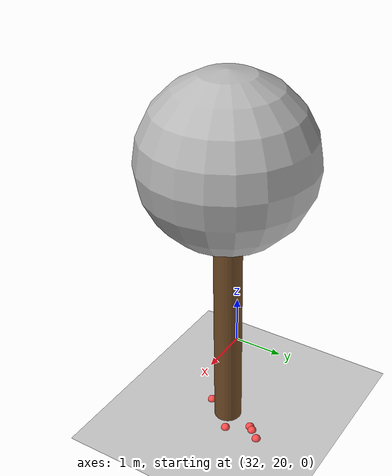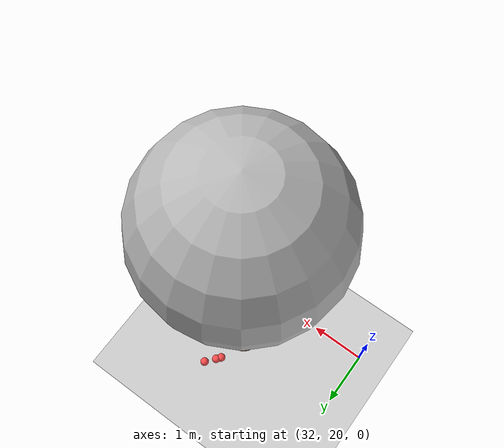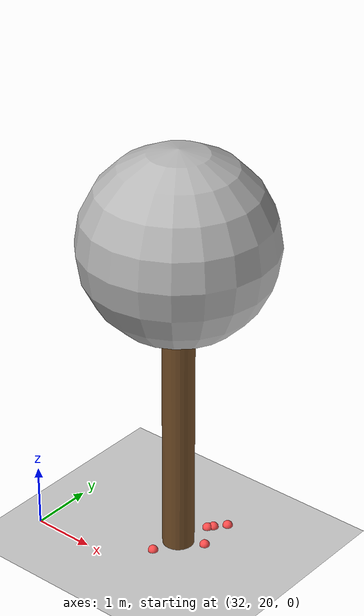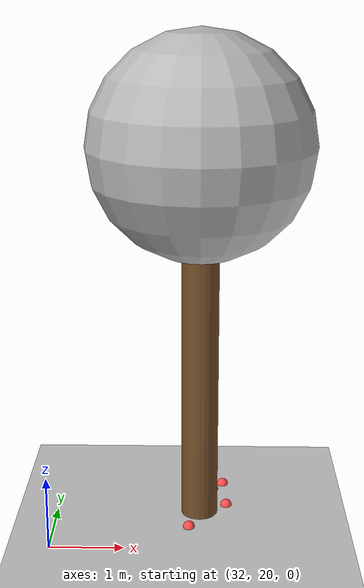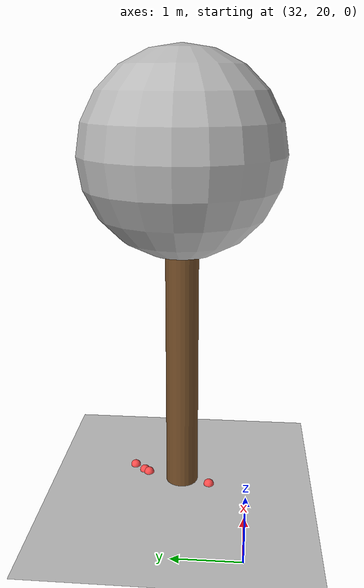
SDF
<sdf version="1.7">
 <world name="default">
  <model name="ground_plane">
   <static>1</static>
   <link name="link">
    <collision name="collision">
     <geometry><plane><normal>0 0 1</normal><size>100 100</size></plane></geometry>
     <surface>
      <contact><collide_bitmask>65535</collide_bitmask></contact>
      <friction><ode><mu>100</mu><mu2>50</mu2></ode></friction>
     </surface>
    </collision>
    <visual name="visual">
     <cast_shadows>0</cast_shadows>
     <geometry><plane><normal>0 0 1</normal><size>100 100</size></plane></geometry>
     <material>
      <script><uri>file://media/materials/scripts/gazebo.material</uri><name>Gazebo/Grey</name></script>
     </material>
    </visual>
   </link>
  </model>
  <model name="tree_simple_46">
   <static>1</static>
   <link name="link">
    <pose>0 0 0.1 0 -0 0</pose>
    <inertial>
     <mass>666</mass>
     <inertia>
      <ixx>0.0861167</ixx>
      <ixy>0</ixy>
      <ixz>0</ixz>
      <iyy>0.0861167</iyy>
      <iyz>0</iyz>
      <izz>0.0861167</izz>
     </inertia>
    </inertial>
    <collision name="collision_trunk">
     <pose>0 0 2 0 -0 0</pose>
     <geometry><cylinder><radius>0.25</radius><length>4</length></cylinder></geometry>
     <surface>
      <contact>
       <poissons_ratio>0.347</poissons_ratio>
       <elastic_modulus>8.8e+09</elastic_modulus>
       <ode><kp>100000</kp><kd>100</kd><max_vel>100</max_vel><min_depth>0.001</min_depth></ode>
      </contact>
      <friction>
       <torsional>
        <coefficient>1</coefficient>
        <use_patch_radius>0</use_patch_radius>
        <surface_radius>0.01</surface_radius>
       </torsional>
      </friction>
     </surface>
    </collision>
    <collision name="collision_treetop">
     <pose>0 0 5.2 0 -0 0</pose>
     <geometry><sphere><radius>1.5</radius></sphere></geometry>
     <surface>
      <contact>
       <poissons_ratio>0.347</poissons_ratio>
       <elastic_modulus>8.8e+09</elastic_modulus>
       <ode><kp>100000</kp><kd>100</kd><max_vel>100</max_vel><min_depth>0.001</min_depth></ode>
      </contact>
      <friction>
       <torsional>
        <coefficient>1</coefficient>
        <use_patch_radius>0</use_patch_radius>
        <surface_radius>0.01</surface_radius>
       </torsional>
      </friction>
     </surface>
    </collision>
    <visual name="trunk">
     <pose>0 0 2 0 -0 0</pose>
     <geometry><cylinder><radius>0.25</radius><length>4</length></cylinder></geometry>
     <material>
      <script>
       <uri>model://tree_simple/scripts</uri>
       <uri>model://tree_simple/materials/textures</uri>
       <name>TreeSimple/Trunk</name>
      </script>
     </material>
    </visual>
    <visual name="treetop">
     <pose>0 0 5.2 0 -0 0</pose>
     <geometry><sphere><radius>1.5</radius></sphere></geometry>
     <material>
      <script>
       <uri>model://tree_simple/scripts</uri>
       <uri>model://tree_simple/materials/textures</uri>
       <name>TreeSimple/Treetop</name>
      </script>
     </material>
    </visual>
   </link>
   <pose>34 21 -0.1 0 -0 0</pose>
  </model>
  <model name="seed_red_219">
   <link name="link">
    <inertial>
     <mass>1</mass>
     <inertia><ixx>0.1</ixx><ixy>0</ixy><ixz>0</ixz><iyy>0.1</iyy><iyz>0</iyz><izz>0.1</izz></inertia>
    </inertial>
    <visual name="visual">
     <geometry><sphere><radius>0.08</radius></sphere></geometry>
     <material>
      <script><name>Gazebo/Grey</name><uri>file://media/materials/scripts/gazebo.material</uri></script>
      <shader type="pixel"><normal_map>__default__</normal_map></shader>
      <ambient>1 0.3 0.3 1</ambient>
      <diffuse>0.7 0.7 0.7 1</diffuse>
      <specular>0.01 0.01 0.01 1</specular>
      <emissive>0 0 0 1</emissive>
     </material>
    </visual>
    <collision name="collision">
     <geometry><sphere><radius>0.0005</radius></sphere></geometry>
     <surface>
      <friction>
       <ode><mu>1</mu><mu2>1</mu2><fdir1>0 0 0</fdir1><slip1>0</slip1><slip2>0</slip2></ode>
       <torsional>
        <coefficient>1</coefficient>
        <patch_radius>0</patch_radius>
        <surface_radius>0</surface_radius>
        <use_patch_radius>1</use_patch_radius>
        <ode><slip>0</slip></ode>
       </torsional>
      </friction>
      <bounce><restitution_coefficient>0</restitution_coefficient><threshold>1e+06</threshold></bounce>
      <contact>
       <collide_without_contact>0</collide_without_contact>
       <collide_without_contact_bitmask>1</collide_without_contact_bitmask>
       <collide_bitmask>1</collide_bitmask>
       <ode>
        <soft_cfm>0</soft_cfm>
        <soft_erp>0.2</soft_erp>
        <kp>1e+13</kp>
        <kd>1</kd>
        <max_vel>0.01</max_vel>
        <min_depth>0</min_depth>
       </ode>
       <bullet>
        <split_impulse>1</split_impulse>
        <split_impulse_penetration_threshold>-0.01</split_impulse_penetration_threshold>
        <soft_cfm>0</soft_cfm>
        <soft_erp>0.2</soft_erp>
        <kp>1e+13</kp>
        <kd>1</kd>
       </bullet>
      </contact>
     </surface>
    </collision>
   </link>
   <static>0</static>
   <pose>34.1335 21.5543 0.0005 0 -0 0</pose>
  </model>
  <model name="seed_red_220">
   <link name="link">
    <inertial>
     <mass>1</mass>
     <inertia><ixx>0.1</ixx><ixy>0</ixy><ixz>0</ixz><iyy>0.1</iyy><iyz>0</iyz><izz>0.1</izz></inertia>
    </inertial>
    <visual name="visual">
     <geometry><sphere><radius>0.08</radius></sphere></geometry>
     <material>
      <script><name>Gazebo/Grey</name><uri>file://media/materials/scripts/gazebo.material</uri></script>
      <shader type="pixel"><normal_map>__default__</normal_map></shader>
      <ambient>1 0.3 0.3 1</ambient>
      <diffuse>0.7 0.7 0.7 1</diffuse>
      <specular>0.01 0.01 0.01 1</specular>
      <emissive>0 0 0 1</emissive>
     </material>
    </visual>
    <collision name="collision">
     <geometry><sphere><radius>0.0005</radius></sphere></geometry>
     <surface>
      <friction>
       <ode><mu>1</mu><mu2>1</mu2><fdir1>0 0 0</fdir1><slip1>0</slip1><slip2>0</slip2></ode>
       <torsional>
        <coefficient>1</coefficient>
        <patch_radius>0</patch_radius>
        <surface_radius>0</surface_radius>
        <use_patch_radius>1</use_patch_radius>
        <ode><slip>0</slip></ode>
       </torsional>
      </friction>
      <bounce><restitution_coefficient>0</restitution_coefficient><threshold>1e+06</threshold></bounce>
      <contact>
       <collide_without_contact>0</collide_without_contact>
       <collide_without_contact_bitmask>1</collide_without_contact_bitmask>
       <collide_bitmask>1</collide_bitmask>
       <ode>
        <soft_cfm>0</soft_cfm>
        <soft_erp>0.2</soft_erp>
        <kp>1e+13</kp>
        <kd>1</kd>
        <max_vel>0.01</max_vel>
        <min_depth>0</min_depth>
       </ode>
       <bullet>
        <split_impulse>1</split_impulse>
        <split_impulse_penetration_threshold>-0.01</split_impulse_penetration_threshold>
        <soft_cfm>0</soft_cfm>
        <soft_erp>0.2</soft_erp>
        <kp>1e+13</kp>
        <kd>1</kd>
       </bullet>
      </contact>
     </surface>
    </collision>
   </link>
   <static>0</static>
   <pose>33.8577 20.5597 0.0005 0 -0 0</pose>
  </model>
  <model name="seed_red_221">
   <link name="link">
    <inertial>
     <mass>1</mass>
     <inertia><ixx>0.1</ixx><ixy>0</ixy><ixz>0</ixz><iyy>0.1</iyy><iyz>0</iyz><izz>0.1</izz></inertia>
    </inertial>
    <visual name="visual">
     <geometry><sphere><radius>0.08</radius></sphere></geometry>
     <material>
      <script><name>Gazebo/Grey</name><uri>file://media/materials/scripts/gazebo.material</uri></script>
      <shader type="pixel"><normal_map>__default__</normal_map></shader>
      <ambient>1 0.3 0.3 1</ambient>
      <diffuse>0.7 0.7 0.7 1</diffuse>
      <specular>0.01 0.01 0.01 1</specular>
      <emissive>0 0 0 1</emissive>
     </material>
    </visual>
    <collision name="collision">
     <geometry><sphere><radius>0.0005</radius></sphere></geometry>
     <surface>
      <friction>
       <ode><mu>1</mu><mu2>1</mu2><fdir1>0 0 0</fdir1><slip1>0</slip1><slip2>0</slip2></ode>
       <torsional>
        <coefficient>1</coefficient>
        <patch_radius>0</patch_radius>
        <surface_radius>0</surface_radius>
        <use_patch_radius>1</use_patch_radius>
        <ode><slip>0</slip></ode>
       </torsional>
      </friction>
      <bounce><restitution_coefficient>0</restitution_coefficient><threshold>1e+06</threshold></bounce>
      <contact>
       <collide_without_contact>0</collide_without_contact>
       <collide_without_contact_bitmask>1</collide_without_contact_bitmask>
       <collide_bitmask>1</collide_bitmask>
       <ode>
        <soft_cfm>0</soft_cfm>
        <soft_erp>0.2</soft_erp>
        <kp>1e+13</kp>
        <kd>1</kd>
        <max_vel>0.01</max_vel>
        <min_depth>0</min_depth>
       </ode>
       <bullet>
        <split_impulse>1</split_impulse>
        <split_impulse_penetration_threshold>-0.01</split_impulse_penetration_threshold>
        <soft_cfm>0</soft_cfm>
        <soft_erp>0.2</soft_erp>
        <kp>1e+13</kp>
        <kd>1</kd>
       </bullet>
      </contact>
     </surface>
    </collision>
   </link>
   <static>0</static>
   <pose>34.3401 21.8051 0.0005 0 -0 0</pose>
  </model>
  <model name="seed_red_223">
   <link name="link">
    <inertial>
     <mass>1</mass>
     <inertia><ixx>0.1</ixx><ixy>0</ixy><ixz>0</ixz><iyy>0.1</iyy><iyz>0</iyz><izz>0.1</izz></inertia>
    </inertial>
    <visual name="visual">
     <geometry><sphere><radius>0.08</radius></sphere></geometry>
     <material>
      <script><name>Gazebo/Grey</name><uri>file://media/materials/scripts/gazebo.material</uri></script>
      <shader type="pixel"><normal_map>__default__</normal_map></shader>
      <ambient>1 0.3 0.3 1</ambient>
      <diffuse>0.7 0.7 0.7 1</diffuse>
      <specular>0.01 0.01 0.01 1</specular>
      <emissive>0 0 0 1</emissive>
     </material>
    </visual>
    <collision name="collision">
     <geometry><sphere><radius>0.0005</radius></sphere></geometry>
     <surface>
      <friction>
       <ode><mu>1</mu><mu2>1</mu2><fdir1>0 0 0</fdir1><slip1>0</slip1><slip2>0</slip2></ode>
       <torsional>
        <coefficient>1</coefficient>
        <patch_radius>0</patch_radius>
        <surface_radius>0</surface_radius>
        <use_patch_radius>1</use_patch_radius>
        <ode><slip>0</slip></ode>
       </torsional>
      </friction>
      <bounce><restitution_coefficient>0</restitution_coefficient><threshold>1e+06</threshold></bounce>
      <contact>
       <collide_without_contact>0</collide_without_contact>
       <collide_without_contact_bitmask>1</collide_without_contact_bitmask>
       <collide_bitmask>1</collide_bitmask>
       <ode>
        <soft_cfm>0</soft_cfm>
        <soft_erp>0.2</soft_erp>
        <kp>1e+13</kp>
        <kd>1</kd>
        <max_vel>0.01</max_vel>
        <min_depth>0</min_depth>
       </ode>
       <bullet>
        <split_impulse>1</split_impulse>
        <split_impulse_penetration_threshold>-0.01</split_impulse_penetration_threshold>
        <soft_cfm>0</soft_cfm>
        <soft_erp>0.2</soft_erp>
        <kp>1e+13</kp>
        <kd>1</kd>
       </bullet>
      </contact>
     </surface>
    </collision>
   </link>
   <static>0</static>
   <pose>34.193 21.6317 0.0005 0 -0 0</pose>
  </model>
  <model name="seed_red_224">
   <link name="link">
    <inertial>
     <mass>1</mass>
     <inertia><ixx>0.1</ixx><ixy>0</ixy><ixz>0</ixz><iyy>0.1</iyy><iyz>0</iyz><izz>0.1</izz></inertia>
    </inertial>
    <visual name="visual">
     <geometry><sphere><radius>0.08</radius></sphere></geometry>
     <material>
      <script><name>Gazebo/Grey</name><uri>file://media/materials/scripts/gazebo.material</uri></script>
      <shader type="pixel"><normal_map>__default__</normal_map></shader>
      <ambient>1 0.3 0.3 1</ambient>
      <diffuse>0.7 0.7 0.7 1</diffuse>
      <specular>0.01 0.01 0.01 1</specular>
      <emissive>0 0 0 1</emissive>
     </material>
    </visual>
    <collision name="collision">
     <geometry><sphere><radius>0.0005</radius></sphere></geometry>
     <surface>
      <friction>
       <ode><mu>1</mu><mu2>1</mu2><fdir1>0 0 0</fdir1><slip1>0</slip1><slip2>0</slip2></ode>
       <torsional>
        <coefficient>1</coefficient>
        <patch_radius>0</patch_radius>
        <surface_radius>0</surface_radius>
        <use_patch_radius>1</use_patch_radius>
        <ode><slip>0</slip></ode>
       </torsional>
      </friction>
      <bounce><restitution_coefficient>0</restitution_coefficient><threshold>1e+06</threshold></bounce>
      <contact>
       <collide_without_contact>0</collide_without_contact>
       <collide_without_contact_bitmask>1</collide_without_contact_bitmask>
       <collide_bitmask>1</collide_bitmask>
       <ode>
        <soft_cfm>0</soft_cfm>
        <soft_erp>0.2</soft_erp>
        <kp>1e+13</kp>
        <kd>1</kd>
        <max_vel>0.01</max_vel>
        <min_depth>0</min_depth>
       </ode>
       <bullet>
        <split_impulse>1</split_impulse>
        <split_impulse_penetration_threshold>-0.01</split_impulse_penetration_threshold>
        <soft_cfm>0</soft_cfm>
        <soft_erp>0.2</soft_erp>
        <kp>1e+13</kp>
        <kd>1</kd>
       </bullet>
      </contact>
     </surface>
    </collision>
   </link>
   <static>0</static>
   <pose>34.3812 21.1788 0.0005 0 -0 0</pose>
  </model>
 </world>
</sdf>
